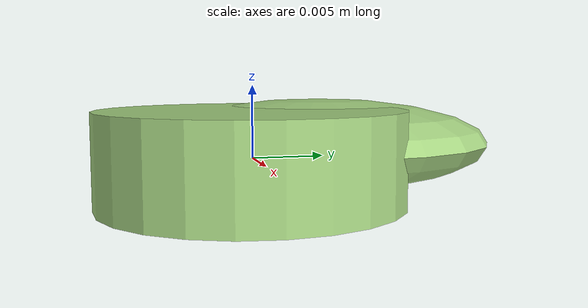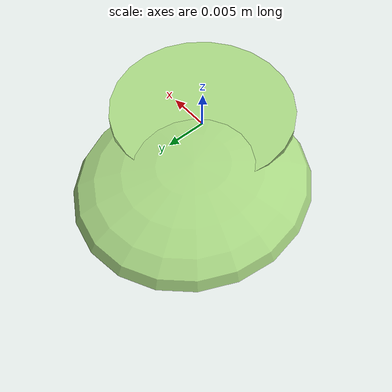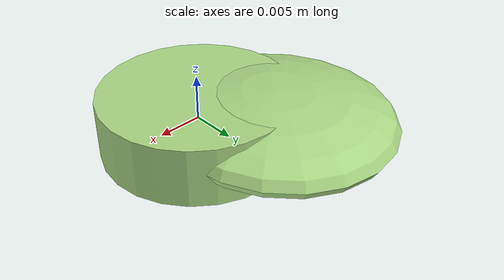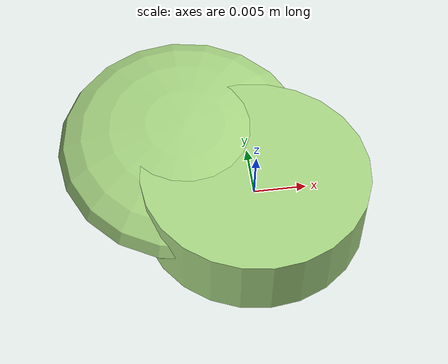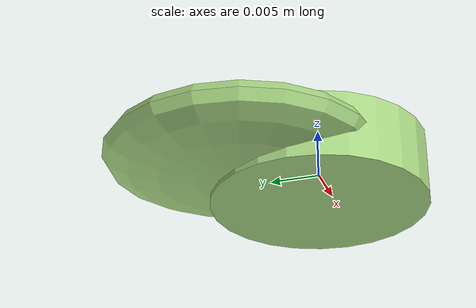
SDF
<?xml version="1.0" ?>
<!-- |    This document was autogenerated by xmacro from data/veggie_template/veggie_base.sdf.xacro  | -->
<!-- |    EDITING THIS FILE BY HAND IS NOT RECOMMENDED                                               | -->
<sdf version="1.8">
	<!-- Parameters -->
	<!-- Base -->
	<!-- Joint 0 -->
	<!-- Link 1 -->
	<!-- Joint 1 -->
	<!-- Link 2 -->
	<!-- Primitives -->
	<!-- All dimensions are half -->
	<!-- Object -->
	<model name="veggie">
		<!-- link0 -->
		<link name="link0">
			<inertial>
				<mass>0.0024334419997002104</mass>
				<inertia>
					<ixx>7.984688590994716e-08</ixx>
					<ixy>0</ixy>
					<ixz>0</ixz>
					<iyy>7.984688590994716e-08</iyy>
					<iyz>0</iyz>
					<izz>1.4177033729448192e-07</izz>
				</inertia>
			</inertial>
			<visual name="link0_visual">
				<pose>0 0 0 0 0 0</pose>
				<geometry>
					<cylinder>
						<radius>0.010794367118604533</radius>
						<length>0.006647766280998525</length>
					</cylinder>
				</geometry>
				<material>
					<ambient>0.659 0.839 0.514 1</ambient>
					<diffuse>0.659 0.839 0.514 1</diffuse>
					<specular>0 0 0 0</specular>
					<emissive>0 0 0 1</emissive>
				</material>
			</visual>
			<collision name="link0_collision">
				<pose>0 0 0 0 0 0 </pose>
				<geometry>
					<cylinder>
						<radius>0.010794367118604533</radius>
						<length>0.006647766280998525</length>
					</cylinder>
				</geometry>
			</collision>
		</link>
		<!-- link1 -->
		<joint name="joint0" type="fixed">
			<pose relative_to="link0">-0.005879701095668155 0.00622158674467825 0.0004080602188091898 0.0 0.0 0.0</pose>
			<parent>link0</parent>
			<child>link1</child>
		</joint>
		<link name="link1">
			<pose relative_to="joint0">0 0 0 0 0 0</pose>
			<inertial>
				<mass>0.0024103807850717964</mass>
				<inertia>
					<ixx>9.324734959210227e-08</ixx>
					<ixy>0</ixy>
					<ixz>0</ixz>
					<iyy>8.06651443220224e-08</iyy>
					<iyz>0</iyz>
					<izz>1.6262305520735687e-07</izz>
				</inertia>
			</inertial>
			<visual name="link1_visual">
				<pose>0 0 0 0 0 0</pose>
				<geometry>
					<ellipsoid>
						<radii>0.012474752382493189 0.013480336919202068 0.0034218687769774258</radii>
					</ellipsoid>
				</geometry>
				<material>
					<ambient>0.659 0.839 0.514 1</ambient>
					<diffuse>0.659 0.839 0.514 1</diffuse>
					<specular>0 0 0 0</specular>
					<emissive>0 0 0 1</emissive>
				</material>
			</visual>
			<collision name="link1_collision">
				<pose>0 0 0 0 0 0 </pose>
				<geometry>
					<ellipsoid>
						<radii>0.012474752382493189 0.013480336919202068 0.0034218687769774258</radii>
					</ellipsoid>
				</geometry>
			</collision>
		</link>
		<!-- link2 -->
	</model>
</sdf>
